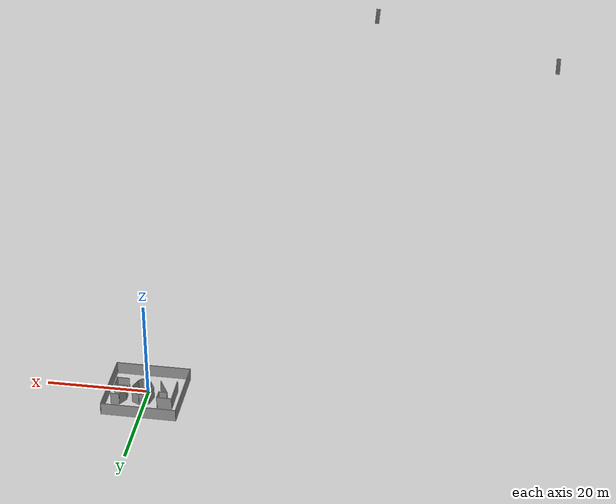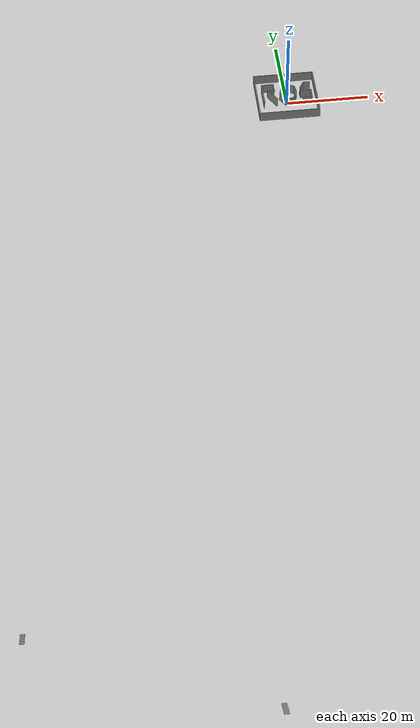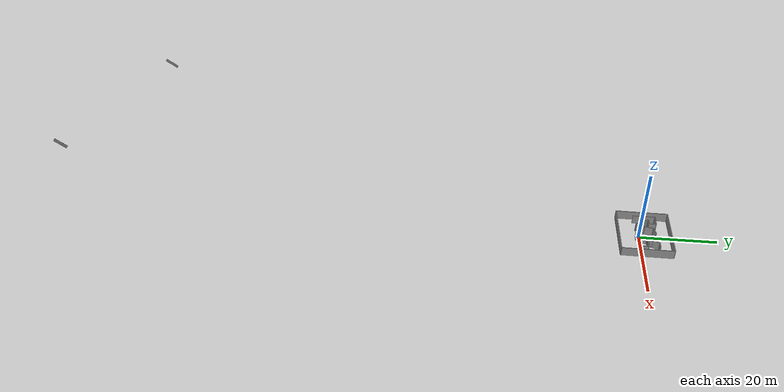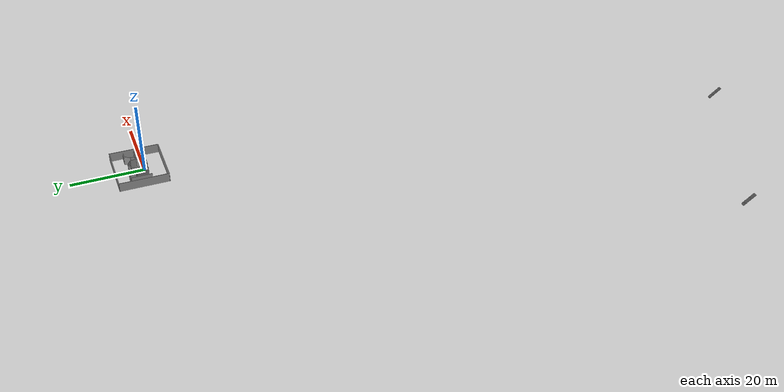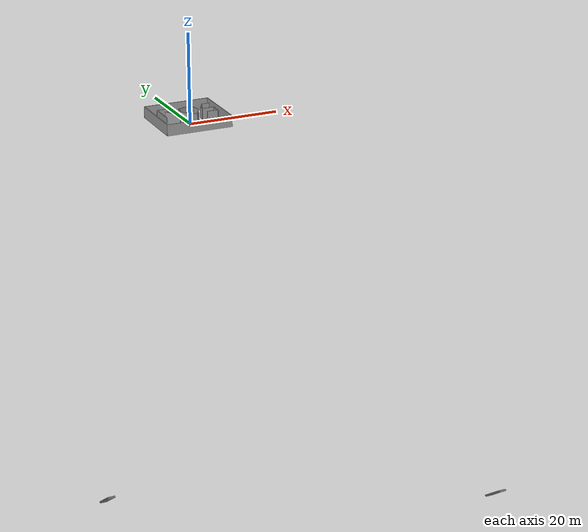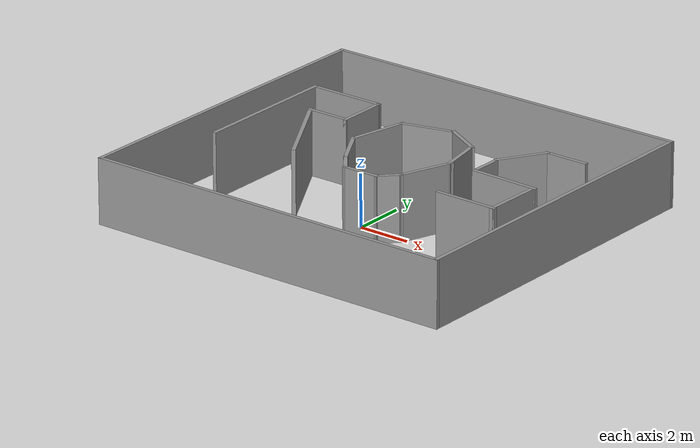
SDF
<?xml version='1.0'?>
<sdf version='1.7'>
  <model name='ROS_world'>
    <pose>-32.1144 -78.6719 0 0 -0 0</pose>
    <link name='Stairs_0'>
      <visual name='Stairs_0_Visual_0'>
        <pose>8.59693 -83.3954 0.083333 0 -0 0</pose>
        <geometry>
          <box>
            <size>1 0.233333 0.166667</size>
          </box>
        </geometry>
        <material>
          <script>
            <uri>file://media/materials/scripts/gazebo.material</uri>
            <name>Gazebo/Grey</name>
          </script>
          <ambient>1 1 1 1</ambient>
        </material>
        <meta>
          <layer>0</layer>
        </meta>
      </visual>
      <collision name='Stairs_0_Collision_0'>
        <geometry>
          <box>
            <size>1 0.233333 0.166667</size>
          </box>
        </geometry>
        <pose>8.59693 -83.3954 0.083333 0 -0 0</pose>
      </collision>
      <visual name='Stairs_0_Visual_1'>
        <pose>8.59693 -83.6287 0.25 0 -0 0</pose>
        <geometry>
          <box>
            <size>1 0.233333 0.166667</size>
          </box>
        </geometry>
        <material>
          <script>
            <uri>file://media/materials/scripts/gazebo.material</uri>
            <name>Gazebo/Grey</name>
          </script>
          <ambient>1 1 1 1</ambient>
        </material>
        <meta>
          <layer>0</layer>
        </meta>
      </visual>
      <collision name='Stairs_0_Collision_1'>
        <geometry>
          <box>
            <size>1 0.233333 0.166667</size>
          </box>
        </geometry>
        <pose>8.59693 -83.6287 0.25 0 -0 0</pose>
      </collision>
      <visual name='Stairs_0_Visual_2'>
        <pose>8.59693 -83.862 0.416667 0 -0 0</pose>
        <geometry>
          <box>
            <size>1 0.233333 0.166667</size>
          </box>
        </geometry>
        <material>
          <script>
            <uri>file://media/materials/scripts/gazebo.material</uri>
            <name>Gazebo/Grey</name>
          </script>
          <ambient>1 1 1 1</ambient>
        </material>
        <meta>
          <layer>0</layer>
        </meta>
      </visual>
      <collision name='Stairs_0_Collision_2'>
        <geometry>
          <box>
            <size>1 0.233333 0.166667</size>
          </box>
        </geometry>
        <pose>8.59693 -83.862 0.416667 0 -0 0</pose>
      </collision>
      <visual name='Stairs_0_Visual_3'>
        <pose>8.59693 -84.0954 0.583333 0 -0 0</pose>
        <geometry>
          <box>
            <size>1 0.233333 0.166667</size>
          </box>
        </geometry>
        <material>
          <script>
            <uri>file://media/materials/scripts/gazebo.material</uri>
            <name>Gazebo/Grey</name>
          </script>
          <ambient>1 1 1 1</ambient>
        </material>
        <meta>
          <layer>0</layer>
        </meta>
      </visual>
      <collision name='Stairs_0_Collision_3'>
        <geometry>
          <box>
            <size>1 0.233333 0.166667</size>
          </box>
        </geometry>
        <pose>8.59693 -84.0954 0.583333 0 -0 0</pose>
      </collision>
      <visual name='Stairs_0_Visual_4'>
        <pose>8.59693 -84.3287 0.75 0 -0 0</pose>
        <geometry>
          <box>
            <size>1 0.233333 0.166667</size>
          </box>
        </geometry>
        <material>
          <script>
            <uri>file://media/materials/scripts/gazebo.material</uri>
            <name>Gazebo/Grey</name>
          </script>
          <ambient>1 1 1 1</ambient>
        </material>
        <meta>
          <layer>0</layer>
        </meta>
      </visual>
      <collision name='Stairs_0_Collision_4'>
        <geometry>
          <box>
            <size>1 0.233333 0.166667</size>
          </box>
        </geometry>
        <pose>8.59693 -84.3287 0.75 0 -0 0</pose>
      </collision>
      <visual name='Stairs_0_Visual_5'>
        <pose>8.59693 -84.5621 0.916667 0 -0 0</pose>
        <geometry>
          <box>
            <size>1 0.233333 0.166667</size>
          </box>
        </geometry>
        <material>
          <script>
            <uri>file://media/materials/scripts/gazebo.material</uri>
            <name>Gazebo/Grey</name>
          </script>
          <ambient>1 1 1 1</ambient>
        </material>
        <meta>
          <layer>0</layer>
        </meta>
      </visual>
      <collision name='Stairs_0_Collision_5'>
        <geometry>
          <box>
            <size>1 0.233333 0.166667</size>
          </box>
        </geometry>
        <pose>8.59693 -84.5621 0.916667 0 -0 0</pose>
      </collision>
      <visual name='Stairs_0_Visual_6'>
        <pose>8.59693 -84.7954 1.08333 0 -0 0</pose>
        <geometry>
          <box>
            <size>1 0.233333 0.166667</size>
          </box>
        </geometry>
        <material>
          <script>
            <uri>file://media/materials/scripts/gazebo.material</uri>
            <name>Gazebo/Grey</name>
          </script>
          <ambient>1 1 1 1</ambient>
        </material>
        <meta>
          <layer>0</layer>
        </meta>
      </visual>
      <collision name='Stairs_0_Collision_6'>
        <geometry>
          <box>
            <size>1 0.233333 0.166667</size>
          </box>
        </geometry>
        <pose>8.59693 -84.7954 1.08333 0 -0 0</pose>
      </collision>
      <visual name='Stairs_0_Visual_7'>
        <pose>8.59693 -85.0287 1.25 0 -0 0</pose>
        <geometry>
          <box>
            <size>1 0.233333 0.166667</size>
          </box>
        </geometry>
        <material>
          <script>
            <uri>file://media/materials/scripts/gazebo.material</uri>
            <name>Gazebo/Grey</name>
          </script>
          <ambient>1 1 1 1</ambient>
        </material>
        <meta>
          <layer>0</layer>
        </meta>
      </visual>
      <collision name='Stairs_0_Collision_7'>
        <geometry>
          <box>
            <size>1 0.233333 0.166667</size>
          </box>
        </geometry>
        <pose>8.59693 -85.0287 1.25 0 -0 0</pose>
      </collision>
      <visual name='Stairs_0_Visual_8'>
        <pose>8.59693 -85.2621 1.41667 0 -0 0</pose>
        <geometry>
          <box>
            <size>1 0.233333 0.166667</size>
          </box>
        </geometry>
        <material>
          <script>
            <uri>file://media/materials/scripts/gazebo.material</uri>
            <name>Gazebo/Grey</name>
          </script>
          <ambient>1 1 1 1</ambient>
        </material>
        <meta>
          <layer>0</layer>
        </meta>
      </visual>
      <collision name='Stairs_0_Collision_8'>
        <geometry>
          <box>
            <size>1 0.233333 0.166667</size>
          </box>
        </geometry>
        <pose>8.59693 -85.2621 1.41667 0 -0 0</pose>
      </collision>
      <visual name='Stairs_0_Visual_9'>
        <pose>8.59693 -85.4954 1.58333 0 -0 0</pose>
        <geometry>
          <box>
            <size>1 0.233333 0.166667</size>
          </box>
        </geometry>
        <material>
          <script>
            <uri>file://media/materials/scripts/gazebo.material</uri>
            <name>Gazebo/Grey</name>
          </script>
          <ambient>1 1 1 1</ambient>
        </material>
        <meta>
          <layer>0</layer>
        </meta>
      </visual>
      <collision name='Stairs_0_Collision_9'>
        <geometry>
          <box>
            <size>1 0.233333 0.166667</size>
          </box>
        </geometry>
        <pose>8.59693 -85.4954 1.58333 0 -0 0</pose>
      </collision>
      <visual name='Stairs_0_Visual_10'>
        <pose>8.59693 -85.7287 1.75 0 -0 0</pose>
        <geometry>
          <box>
            <size>1 0.233333 0.166667</size>
          </box>
        </geometry>
        <material>
          <script>
            <uri>file://media/materials/scripts/gazebo.material</uri>
            <name>Gazebo/Grey</name>
          </script>
          <ambient>1 1 1 1</ambient>
        </material>
        <meta>
          <layer>0</layer>
        </meta>
      </visual>
      <collision name='Stairs_0_Collision_10'>
        <geometry>
          <box>
            <size>1 0.233333 0.166667</size>
          </box>
        </geometry>
        <pose>8.59693 -85.7287 1.75 0 -0 0</pose>
      </collision>
      <visual name='Stairs_0_Visual_11'>
        <pose>8.59693 -85.9621 1.91667 0 -0 0</pose>
        <geometry>
          <box>
            <size>1 0.233333 0.166667</size>
          </box>
        </geometry>
        <material>
          <script>
            <uri>file://media/materials/scripts/gazebo.material</uri>
            <name>Gazebo/Grey</name>
          </script>
          <ambient>1 1 1 1</ambient>
        </material>
        <meta>
          <layer>0</layer>
        </meta>
      </visual>
      <collision name='Stairs_0_Collision_11'>
        <geometry>
          <box>
            <size>1 0.233333 0.166667</size>
          </box>
        </geometry>
        <pose>8.59693 -85.9621 1.91667 0 -0 0</pose>
      </collision>
      <visual name='Stairs_0_Visual_12'>
        <pose>8.59693 -86.1954 2.08333 0 -0 0</pose>
        <geometry>
          <box>
            <size>1 0.233333 0.166667</size>
          </box>
        </geometry>
        <material>
          <script>
            <uri>file://media/materials/scripts/gazebo.material</uri>
            <name>Gazebo/Grey</name>
          </script>
          <ambient>1 1 1 1</ambient>
        </material>
        <meta>
          <layer>0</layer>
        </meta>
      </visual>
      <collision name='Stairs_0_Collision_12'>
        <geometry>
          <box>
            <size>1 0.233333 0.166667</size>
          </box>
        </geometry>
        <pose>8.59693 -86.1954 2.08333 0 -0 0</pose>
      </collision>
      <visual name='Stairs_0_Visual_13'>
        <pose>8.59693 -86.4287 2.25 0 -0 0</pose>
        <geometry>
          <box>
            <size>1 0.233333 0.166667</size>
          </box>
        </geometry>
        <material>
          <script>
            <uri>file://media/materials/scripts/gazebo.material</uri>
            <name>Gazebo/Grey</name>
          </script>
          <ambient>1 1 1 1</ambient>
        </material>
        <meta>
          <layer>0</layer>
        </meta>
      </visual>
      <collision name='Stairs_0_Collision_13'>
        <geometry>
          <box>
            <size>1 0.233333 0.166667</size>
          </box>
        </geometry>
        <pose>8.59693 -86.4287 2.25 0 -0 0</pose>
      </collision>
      <visual name='Stairs_0_Visual_14'>
        <pose>8.59693 -86.662 2.41667 0 -0 0</pose>
        <geometry>
          <box>
            <size>1 0.233333 0.166667</size>
          </box>
        </geometry>
        <material>
          <script>
            <uri>file://media/materials/scripts/gazebo.material</uri>
            <name>Gazebo/Grey</name>
          </script>
          <ambient>1 1 1 1</ambient>
        </material>
        <meta>
          <layer>0</layer>
        </meta>
      </visual>
      <collision name='Stairs_0_Collision_14'>
        <geometry>
          <box>
            <size>1 0.233333 0.166667</size>
          </box>
        </geometry>
        <pose>8.59693 -86.662 2.41667 0 -0 0</pose>
      </collision>
    </link>
    <link name='Stairs_1'>
      <visual name='Stairs_1_Visual_0'>
        <pose>-39.1028 -63.0357 0.083333 0 -0 0</pose>
        <geometry>
          <box>
            <size>1 0.233333 0.166667</size>
          </box>
        </geometry>
        <material>
          <script>
            <uri>file://media/materials/scripts/gazebo.material</uri>
            <name>Gazebo/Grey</name>
          </script>
          <ambient>1 1 1 1</ambient>
        </material>
        <meta>
          <layer>0</layer>
        </meta>
      </visual>
      <collision name='Stairs_1_Collision_0'>
        <geometry>
          <box>
            <size>1 0.233333 0.166667</size>
          </box>
        </geometry>
        <pose>-39.1028 -63.0357 0.083333 0 -0 0</pose>
      </collision>
      <visual name='Stairs_1_Visual_1'>
        <pose>-39.1028 -63.2691 0.25 0 -0 0</pose>
        <geometry>
          <box>
            <size>1 0.233333 0.166667</size>
          </box>
        </geometry>
        <material>
          <script>
            <uri>file://media/materials/scripts/gazebo.material</uri>
            <name>Gazebo/Grey</name>
          </script>
          <ambient>1 1 1 1</ambient>
        </material>
        <meta>
          <layer>0</layer>
        </meta>
      </visual>
      <collision name='Stairs_1_Collision_1'>
        <geometry>
          <box>
            <size>1 0.233333 0.166667</size>
          </box>
        </geometry>
        <pose>-39.1028 -63.2691 0.25 0 -0 0</pose>
      </collision>
      <visual name='Stairs_1_Visual_2'>
        <pose>-39.1028 -63.5024 0.416667 0 -0 0</pose>
        <geometry>
          <box>
            <size>1 0.233333 0.166667</size>
          </box>
        </geometry>
        <material>
          <script>
            <uri>file://media/materials/scripts/gazebo.material</uri>
            <name>Gazebo/Grey</name>
          </script>
          <ambient>1 1 1 1</ambient>
        </material>
        <meta>
          <layer>0</layer>
        </meta>
      </visual>
      <collision name='Stairs_1_Collision_2'>
        <geometry>
          <box>
            <size>1 0.233333 0.166667</size>
          </box>
        </geometry>
        <pose>-39.1028 -63.5024 0.416667 0 -0 0</pose>
      </collision>
      <visual name='Stairs_1_Visual_3'>
        <pose>-39.1028 -63.7357 0.583333 0 -0 0</pose>
        <geometry>
          <box>
            <size>1 0.233333 0.166667</size>
          </box>
        </geometry>
        <material>
          <script>
            <uri>file://media/materials/scripts/gazebo.material</uri>
            <name>Gazebo/Grey</name>
          </script>
          <ambient>1 1 1 1</ambient>
        </material>
        <meta>
          <layer>0</layer>
        </meta>
      </visual>
      <collision name='Stairs_1_Collision_3'>
        <geometry>
          <box>
            <size>1 0.233333 0.166667</size>
          </box>
        </geometry>
        <pose>-39.1028 -63.7357 0.583333 0 -0 0</pose>
      </collision>
      <visual name='Stairs_1_Visual_4'>
        <pose>-39.1028 -63.9691 0.75 0 -0 0</pose>
        <geometry>
          <box>
            <size>1 0.233333 0.166667</size>
          </box>
        </geometry>
        <material>
          <script>
            <uri>file://media/materials/scripts/gazebo.material</uri>
            <name>Gazebo/Grey</name>
          </script>
          <ambient>1 1 1 1</ambient>
        </material>
        <meta>
          <layer>0</layer>
        </meta>
      </visual>
      <collision name='Stairs_1_Collision_4'>
        <geometry>
          <box>
            <size>1 0.233333 0.166667</size>
          </box>
        </geometry>
        <pose>-39.1028 -63.9691 0.75 0 -0 0</pose>
      </collision>
      <visual name='Stairs_1_Visual_5'>
        <pose>-39.1028 -64.2024 0.916667 0 -0 0</pose>
        <geometry>
          <box>
            <size>1 0.233333 0.166667</size>
          </box>
        </geometry>
        <material>
          <script>
            <uri>file://media/materials/scripts/gazebo.material</uri>
            <name>Gazebo/Grey</name>
          </script>
          <ambient>1 1 1 1</ambient>
        </material>
        <meta>
          <layer>0</layer>
        </meta>
      </visual>
      <collision name='Stairs_1_Collision_5'>
        <geometry>
          <box>
            <size>1 0.233333 0.166667</size>
          </box>
        </geometry>
        <pose>-39.1028 -64.2024 0.916667 0 -0 0</pose>
      </collision>
      <visual name='Stairs_1_Visual_6'>
        <pose>-39.1028 -64.4357 1.08333 0 -0 0</pose>
        <geometry>
          <box>
            <size>1 0.233333 0.166667</size>
          </box>
        </geometry>
        <material>
          <script>
            <uri>file://media/materials/scripts/gazebo.material</uri>
            <name>Gazebo/Grey</name>
          </script>
          <ambient>1 1 1 1</ambient>
        </material>
        <meta>
          <layer>0</layer>
        </meta>
      </visual>
      <collision name='Stairs_1_Collision_6'>
        <geometry>
          <box>
            <size>1 0.233333 0.166667</size>
          </box>
        </geometry>
        <pose>-39.1028 -64.4357 1.08333 0 -0 0</pose>
      </collision>
      <visual name='Stairs_1_Visual_7'>
        <pose>-39.1028 -64.6691 1.25 0 -0 0</pose>
        <geometry>
          <box>
            <size>1 0.233333 0.166667</size>
          </box>
        </geometry>
        <material>
          <script>
            <uri>file://media/materials/scripts/gazebo.material</uri>
            <name>Gazebo/Grey</name>
          </script>
          <ambient>1 1 1 1</ambient>
        </material>
        <meta>
          <layer>0</layer>
        </meta>
      </visual>
      <collision name='Stairs_1_Collision_7'>
        <geometry>
          <box>
            <size>1 0.233333 0.166667</size>
          </box>
        </geometry>
        <pose>-39.1028 -64.6691 1.25 0 -0 0</pose>
      </collision>
      <visual name='Stairs_1_Visual_8'>
        <pose>-39.1028 -64.9024 1.41667 0 -0 0</pose>
        <geometry>
          <box>
            <size>1 0.233333 0.166667</size>
          </box>
        </geometry>
        <material>
          <script>
            <uri>file://media/materials/scripts/gazebo.material</uri>
            <name>Gazebo/Grey</name>
          </script>
          <ambient>1 1 1 1</ambient>
        </material>
        <meta>
          <layer>0</layer>
        </meta>
      </visual>
      <collision name='Stairs_1_Collision_8'>
        <geometry>
          <box>
            <size>1 0.233333 0.166667</size>
          </box>
        </geometry>
        <pose>-39.1028 -64.9024 1.41667 0 -0 0</pose>
      </collision>
      <visual name='Stairs_1_Visual_9'>
        <pose>-39.1028 -65.1357 1.58333 0 -0 0</pose>
        <geometry>
          <box>
            <size>1 0.233333 0.166667</size>
          </box>
        </geometry>
        <material>
          <script>
            <uri>file://media/materials/scripts/gazebo.material</uri>
            <name>Gazebo/Grey</name>
          </script>
          <ambient>1 1 1 1</ambient>
        </material>
        <meta>
          <layer>0</layer>
        </meta>
      </visual>
      <collision name='Stairs_1_Collision_9'>
        <geometry>
          <box>
            <size>1 0.233333 0.166667</size>
          </box>
        </geometry>
        <pose>-39.1028 -65.1357 1.58333 0 -0 0</pose>
      </collision>
      <visual name='Stairs_1_Visual_10'>
        <pose>-39.1028 -65.3691 1.75 0 -0 0</pose>
        <geometry>
          <box>
            <size>1 0.233333 0.166667</size>
          </box>
        </geometry>
        <material>
          <script>
            <uri>file://media/materials/scripts/gazebo.material</uri>
            <name>Gazebo/Grey</name>
          </script>
          <ambient>1 1 1 1</ambient>
        </material>
        <meta>
          <layer>0</layer>
        </meta>
      </visual>
      <collision name='Stairs_1_Collision_10'>
        <geometry>
          <box>
            <size>1 0.233333 0.166667</size>
          </box>
        </geometry>
        <pose>-39.1028 -65.3691 1.75 0 -0 0</pose>
      </collision>
      <visual name='Stairs_1_Visual_11'>
        <pose>-39.1028 -65.6024 1.91667 0 -0 0</pose>
        <geometry>
          <box>
            <size>1 0.233333 0.166667</size>
          </box>
        </geometry>
        <material>
          <script>
            <uri>file://media/materials/scripts/gazebo.material</uri>
            <name>Gazebo/Grey</name>
          </script>
          <ambient>1 1 1 1</ambient>
        </material>
        <meta>
          <layer>0</layer>
        </meta>
      </visual>
      <collision name='Stairs_1_Collision_11'>
        <geometry>
          <box>
            <size>1 0.233333 0.166667</size>
          </box>
        </geometry>
        <pose>-39.1028 -65.6024 1.91667 0 -0 0</pose>
      </collision>
      <visual name='Stairs_1_Visual_12'>
        <pose>-39.1028 -65.8357 2.08333 0 -0 0</pose>
        <geometry>
          <box>
            <size>1 0.233333 0.166667</size>
          </box>
        </geometry>
        <material>
          <script>
            <uri>file://media/materials/scripts/gazebo.material</uri>
            <name>Gazebo/Grey</name>
          </script>
          <ambient>1 1 1 1</ambient>
        </material>
        <meta>
          <layer>0</layer>
        </meta>
      </visual>
      <collision name='Stairs_1_Collision_12'>
        <geometry>
          <box>
            <size>1 0.233333 0.166667</size>
          </box>
        </geometry>
        <pose>-39.1028 -65.8357 2.08333 0 -0 0</pose>
      </collision>
      <visual name='Stairs_1_Visual_13'>
        <pose>-39.1028 -66.0691 2.25 0 -0 0</pose>
        <geometry>
          <box>
            <size>1 0.233333 0.166667</size>
          </box>
        </geometry>
        <material>
          <script>
            <uri>file://media/materials/scripts/gazebo.material</uri>
            <name>Gazebo/Grey</name>
          </script>
          <ambient>1 1 1 1</ambient>
        </material>
        <meta>
          <layer>0</layer>
        </meta>
      </visual>
      <collision name='Stairs_1_Collision_13'>
        <geometry>
          <box>
            <size>1 0.233333 0.166667</size>
          </box>
        </geometry>
        <pose>-39.1028 -66.0691 2.25 0 -0 0</pose>
      </collision>
      <visual name='Stairs_1_Visual_14'>
        <pose>-39.1028 -66.3024 2.41667 0 -0 0</pose>
        <geometry>
          <box>
            <size>1 0.233333 0.166667</size>
          </box>
        </geometry>
        <material>
          <script>
            <uri>file://media/materials/scripts/gazebo.material</uri>
            <name>Gazebo/Grey</name>
          </script>
          <ambient>1 1 1 1</ambient>
        </material>
        <meta>
          <layer>0</layer>
        </meta>
      </visual>
      <collision name='Stairs_1_Collision_14'>
        <geometry>
          <box>
            <size>1 0.233333 0.166667</size>
          </box>
        </geometry>
        <pose>-39.1028 -66.3024 2.41667 0 -0 0</pose>
      </collision>
    </link>
    <link name='Wall_11'>
      <collision name='Wall_11_Collision'>
        <geometry>
          <box>
            <size>13.4394 0.15 2.5</size>
          </box>
        </geometry>
        <pose>0 0 1.25 0 -0 0</pose>
      </collision>
      <visual name='Wall_11_Visual'>
        <pose>0 0 1.25 0 -0 0</pose>
        <geometry>
          <box>
            <size>13.4394 0.15 2.5</size>
          </box>
        </geometry>
        <material>
          <script>
            <uri>file://media/materials/scripts/gazebo.material</uri>
            <name>Gazebo/Grey</name>
          </script>
          <ambient>1 1 1 1</ambient>
        </material>
        <meta>
          <layer>0</layer>
        </meta>
      </visual>
      <pose>24.8875 80.0587 0 0 -0 1.5648</pose>
    </link>
    <link name='Wall_13'>
      <collision name='Wall_13_Collision'>
        <geometry>
          <box>
            <size>14.75 0.15 2.5</size>
          </box>
        </geometry>
        <pose>0 0 1.25 0 -0 0</pose>
      </collision>
      <visual name='Wall_13_Visual'>
        <pose>0 0 1.25 0 -0 0</pose>
        <geometry>
          <box>
            <size>14.75 0.15 2.5</size>
          </box>
        </geometry>
        <material>
          <script>
            <uri>file://media/materials/scripts/gazebo.material</uri>
            <name>Gazebo/Grey</name>
          </script>
          <ambient>1 1 1 1</ambient>
        </material>
        <meta>
          <layer>0</layer>
        </meta>
      </visual>
      <pose>32.2274 86.7033 0 0 -0 0</pose>
    </link>
    <link name='Wall_14'>
      <collision name='Wall_14_Collision'>
        <geometry>
          <box>
            <size>13.4394 0.15 2.5</size>
          </box>
        </geometry>
        <pose>0 0 1.25 0 -0 0</pose>
      </collision>
      <visual name='Wall_14_Visual'>
        <pose>0 0 1.25 0 -0 0</pose>
        <geometry>
          <box>
            <size>13.4394 0.15 2.5</size>
          </box>
        </geometry>
        <material>
          <script>
            <uri>file://media/materials/scripts/gazebo.material</uri>
            <name>Gazebo/Grey</name>
          </script>
          <ambient>1 1 1 1</ambient>
        </material>
        <meta>
          <layer>0</layer>
        </meta>
      </visual>
      <pose>39.4875 80.0587 0 0 -0 -1.57679</pose>
    </link>
    <link name='Wall_15'>
      <collision name='Wall_15_Collision'>
        <geometry>
          <box>
            <size>14.75 0.15 2.5</size>
          </box>
        </geometry>
        <pose>0 0 1.25 0 -0 0</pose>
      </collision>
      <visual name='Wall_15_Visual'>
        <pose>0 0 1.25 0 -0 0</pose>
        <geometry>
          <box>
            <size>14.75 0.15 2.5</size>
          </box>
        </geometry>
        <material>
          <script>
            <uri>file://media/materials/scripts/gazebo.material</uri>
            <name>Gazebo/Grey</name>
          </script>
          <ambient>1 1 1 1</ambient>
        </material>
        <meta>
          <layer>0</layer>
        </meta>
      </visual>
      <pose>32.1477 73.3742 0 0 -0 3.14159</pose>
    </link>
    <link name='Wall_17'>
      <collision name='Wall_17_Collision'>
        <geometry>
          <box>
            <size>5.75 0.15 2.5</size>
          </box>
        </geometry>
        <pose>0 0 1.25 0 -0 0</pose>
      </collision>
      <visual name='Wall_17_Visual'>
        <pose>0 0 1.25 0 -0 0</pose>
        <geometry>
          <box>
            <size>5.75 0.15 2.5</size>
          </box>
        </geometry>
        <material>
          <script>
            <uri>file://media/materials/scripts/gazebo.material</uri>
            <name>Gazebo/Grey</name>
          </script>
          <ambient>1 1 1 1</ambient>
        </material>
        <meta>
          <layer>0</layer>
        </meta>
      </visual>
      <pose>26.4457 80.4501 0 0 -0 -1.5708</pose>
    </link>
    <link name='Wall_19'>
      <collision name='Wall_19_Collision'>
        <geometry>
          <box>
            <size>3 0.15 2.5</size>
          </box>
        </geometry>
        <pose>0 0 1.25 0 -0 0</pose>
      </collision>
      <visual name='Wall_19_Visual'>
        <pose>0 0 1.25 0 -0 0</pose>
        <geometry>
          <box>
            <size>3 0.15 2.5</size>
          </box>
        </geometry>
        <material>
          <script>
            <uri>file://media/materials/scripts/gazebo.material</uri>
            <name>Gazebo/Grey</name>
          </script>
          <ambient>1 1 1 1</ambient>
        </material>
        <meta>
          <layer>0</layer>
        </meta>
      </visual>
      <pose>27.8707 83.2501 0 0 -0 0</pose>
    </link>
    <link name='Wall_20'>
      <collision name='Wall_20_Collision'>
        <geometry>
          <box>
            <size>2 0.15 2.5</size>
          </box>
        </geometry>
        <pose>0 0 1.25 0 -0 0</pose>
      </collision>
      <visual name='Wall_20_Visual'>
        <pose>0 0 1.25 0 -0 0</pose>
        <geometry>
          <box>
            <size>2 0.15 2.5</size>
          </box>
        </geometry>
        <material>
          <script>
            <uri>file://media/materials/scripts/gazebo.material</uri>
            <name>Gazebo/Grey</name>
          </script>
          <ambient>1 1 1 1</ambient>
        </material>
        <meta>
          <layer>0</layer>
        </meta>
      </visual>
      <pose>29.2957 82.3251 0 0 -0 -1.5708</pose>
    </link>
    <link name='Wall_21'>
      <collision name='Wall_21_Collision'>
        <geometry>
          <box>
            <size>1.75 0.15 2.5</size>
          </box>
        </geometry>
        <pose>0 0 1.25 0 -0 0</pose>
      </collision>
      <visual name='Wall_21_Visual'>
        <pose>0 0 1.25 0 -0 0</pose>
        <geometry>
          <box>
            <size>1.75 0.15 2.5</size>
          </box>
        </geometry>
        <material>
          <script>
            <uri>file://media/materials/scripts/gazebo.material</uri>
            <name>Gazebo/Grey</name>
          </script>
          <ambient>1 1 1 1</ambient>
        </material>
        <meta>
          <layer>0</layer>
        </meta>
      </visual>
      <pose>28.4957 81.4001 0 0 -0 3.14159</pose>
    </link>
    <link name='Wall_22'>
      <collision name='Wall_22_Collision'>
        <geometry>
          <box>
            <size>4 0.15 2.5</size>
          </box>
        </geometry>
        <pose>0 0 1.25 0 -0 0</pose>
      </collision>
      <visual name='Wall_22_Visual'>
        <pose>0 0 1.25 0 -0 0</pose>
        <geometry>
          <box>
            <size>4 0.15 2.5</size>
          </box>
        </geometry>
        <material>
          <script>
            <uri>file://media/materials/scripts/gazebo.material</uri>
            <name>Gazebo/Grey</name>
          </script>
          <ambient>1 1 1 1</ambient>
        </material>
        <meta>
          <layer>0</layer>
        </meta>
      </visual>
      <pose>28.6582 79.733 0 0 -0 -1.0472</pose>
    </link>
    <link name='Wall_25'>
      <collision name='Wall_25_Collision'>
        <geometry>
          <box>
            <size>1.87052 0.15 2.5</size>
          </box>
        </geometry>
        <pose>0 0 1.25 0 -0 0</pose>
      </collision>
      <visual name='Wall_25_Visual'>
        <pose>0 0 1.25 0 -0 0</pose>
        <geometry>
          <box>
            <size>1.87052 0.15 2.5</size>
          </box>
        </geometry>
        <material>
          <script>
            <uri>file://media/materials/scripts/gazebo.material</uri>
            <name>Gazebo/Grey</name>
          </script>
          <ambient>1 1 1 1</ambient>
        </material>
        <meta>
          <layer>0</layer>
        </meta>
      </visual>
      <pose>31.0046 79.439 0 0 -0 2.08431</pose>
    </link>
    <link name='Wall_26'>
      <collision name='Wall_26_Collision'>
        <geometry>
          <box>
            <size>2.31401 0.15 2.5</size>
          </box>
        </geometry>
        <pose>0 0 1.25 0 -0 0</pose>
      </collision>
      <visual name='Wall_26_Visual'>
        <pose>0 0 1.25 0 -0 0</pose>
        <geometry>
          <box>
            <size>2.31401 0.15 2.5</size>
          </box>
        </geometry>
        <material>
          <script>
            <uri>file://media/materials/scripts/gazebo.material</uri>
            <name>Gazebo/Grey</name>
          </script>
          <ambient>1 1 1 1</ambient>
        </material>
        <meta>
          <layer>0</layer>
        </meta>
      </visual>
      <pose>30.8409 81.2667 0 0 -0 1.3506</pose>
    </link>
    <link name='Wall_31'>
      <collision name='Wall_31_Collision'>
        <geometry>
          <box>
            <size>1.13235 0.15 2.5</size>
          </box>
        </geometry>
        <pose>0 0 1.25 0 -0 0</pose>
      </collision>
      <visual name='Wall_31_Visual'>
        <pose>0 0 1.25 0 -0 0</pose>
        <geometry>
          <box>
            <size>1.13235 0.15 2.5</size>
          </box>
        </geometry>
        <material>
          <script>
            <uri>file://media/materials/scripts/gazebo.material</uri>
            <name>Gazebo/Grey</name>
          </script>
          <ambient>1 1 1 1</ambient>
        </material>
        <meta>
          <layer>0</layer>
        </meta>
      </visual>
      <pose>31.725 78.2991 0 0 -0 -0.919279</pose>
    </link>
    <link name='Wall_32'>
      <collision name='Wall_32_Collision'>
        <geometry>
          <box>
            <size>1.5 0.15 2.5</size>
          </box>
        </geometry>
        <pose>0 0 1.25 0 -0 0</pose>
      </collision>
      <visual name='Wall_32_Visual'>
        <pose>0 0 1.25 0 -0 0</pose>
        <geometry>
          <box>
            <size>1.5 0.15 2.5</size>
          </box>
        </geometry>
        <material>
          <script>
            <uri>file://media/materials/scripts/gazebo.material</uri>
            <name>Gazebo/Grey</name>
          </script>
          <ambient>1 1 1 1</ambient>
        </material>
        <meta>
          <layer>0</layer>
        </meta>
      </visual>
      <pose>32.6979 77.9085 0 0 -0 0</pose>
    </link>
    <link name='Wall_33'>
      <collision name='Wall_33_Collision'>
        <geometry>
          <box>
            <size>1 0.15 2.5</size>
          </box>
        </geometry>
        <pose>0 0 1.25 0 -0 0</pose>
      </collision>
      <visual name='Wall_33_Visual'>
        <pose>0 0 1.25 0 -0 0</pose>
        <geometry>
          <box>
            <size>1 0.15 2.5</size>
          </box>
        </geometry>
        <material>
          <script>
            <uri>file://media/materials/scripts/gazebo.material</uri>
            <name>Gazebo/Grey</name>
          </script>
          <ambient>1 1 1 1</ambient>
        </material>
        <meta>
          <layer>0</layer>
        </meta>
      </visual>
      <pose>33.6734 78.209 0 0 -0 0.785398</pose>
    </link>
    <link name='Wall_34'>
      <collision name='Wall_34_Collision'>
        <geometry>
          <box>
            <size>2.18412 0.15 2.5</size>
          </box>
        </geometry>
        <pose>0 0 1.25 0 -0 0</pose>
      </collision>
      <visual name='Wall_34_Visual'>
        <pose>0 0 1.25 0 -0 0</pose>
        <geometry>
          <box>
            <size>2.18412 0.15 2.5</size>
          </box>
        </geometry>
        <material>
          <script>
            <uri>file://media/materials/scripts/gazebo.material</uri>
            <name>Gazebo/Grey</name>
          </script>
          <ambient>1 1 1 1</ambient>
        </material>
        <meta>
          <layer>0</layer>
        </meta>
      </visual>
      <pose>34.3279 79.4631 0 0 -0 1.21538</pose>
    </link>
    <link name='Wall_35'>
      <collision name='Wall_35_Collision'>
        <geometry>
          <box>
            <size>1.77613 0.15 2.5</size>
          </box>
        </geometry>
        <pose>0 0 1.25 0 -0 0</pose>
      </collision>
      <visual name='Wall_35_Visual'>
        <pose>0 0 1.25 0 -0 0</pose>
        <geometry>
          <box>
            <size>1.77613 0.15 2.5</size>
          </box>
        </geometry>
        <material>
          <script>
            <uri>file://media/materials/scripts/gazebo.material</uri>
            <name>Gazebo/Grey</name>
          </script>
          <ambient>1 1 1 1</ambient>
        </material>
        <meta>
          <layer>0</layer>
        </meta>
      </visual>
      <pose>34.5117 81.1483 0 0 -0 1.75321</pose>
    </link>
    <link name='Wall_36'>
      <collision name='Wall_36_Collision'>
        <geometry>
          <box>
            <size>1.7609 0.15 2.5</size>
          </box>
        </geometry>
        <pose>0 0 1.25 0 -0 0</pose>
      </collision>
      <visual name='Wall_36_Visual'>
        <pose>0 0 1.25 0 -0 0</pose>
        <geometry>
          <box>
            <size>1.7609 0.15 2.5</size>
          </box>
        </geometry>
        <material>
          <script>
            <uri>file://media/materials/scripts/gazebo.material</uri>
            <name>Gazebo/Grey</name>
          </script>
          <ambient>1 1 1 1</ambient>
        </material>
        <meta>
          <layer>0</layer>
        </meta>
      </visual>
      <pose>33.6855 82.4119 0 0 -0 2.62729</pose>
    </link>
    <link name='Wall_37'>
      <collision name='Wall_37_Collision'>
        <geometry>
          <box>
            <size>2.11786 0.15 2.5</size>
          </box>
        </geometry>
        <pose>0 0 1.25 0 -0 0</pose>
      </collision>
      <visual name='Wall_37_Visual'>
        <pose>0 0 1.25 0 -0 0</pose>
        <geometry>
          <box>
            <size>2.11786 0.15 2.5</size>
          </box>
        </geometry>
        <material>
          <script>
            <uri>file://media/materials/scripts/gazebo.material</uri>
            <name>Gazebo/Grey</name>
          </script>
          <ambient>1 1 1 1</ambient>
        </material>
        <meta>
          <layer>0</layer>
        </meta>
      </visual>
      <pose>32.0082 82.5428 0 0 -0 -2.89229</pose>
    </link>
    <link name='Wall_39'>
      <collision name='Wall_39_Collision'>
        <geometry>
          <box>
            <size>1.75 0.15 2.5</size>
          </box>
        </geometry>
        <pose>0 0 1.25 0 -0 0</pose>
      </collision>
      <visual name='Wall_39_Visual'>
        <pose>0 0 1.25 0 -0 0</pose>
        <geometry>
          <box>
            <size>1.75 0.15 2.5</size>
          </box>
        </geometry>
        <material>
          <script>
            <uri>file://media/materials/scripts/gazebo.material</uri>
            <name>Gazebo/Grey</name>
          </script>
          <ambient>1 1 1 1</ambient>
        </material>
        <meta>
          <layer>0</layer>
        </meta>
      </visual>
      <pose>37.5444 83.2271 0 0 -0 3.14159</pose>
    </link>
    <link name='Wall_40'>
      <collision name='Wall_40_Collision'>
        <geometry>
          <box>
            <size>2.0368 0.15 2.5</size>
          </box>
        </geometry>
        <pose>0 0 1.25 0 -0 0</pose>
      </collision>
      <visual name='Wall_40_Visual'>
        <pose>0 0 1.25 0 -0 0</pose>
        <geometry>
          <box>
            <size>2.0368 0.15 2.5</size>
          </box>
        </geometry>
        <material>
          <script>
            <uri>file://media/materials/scripts/gazebo.material</uri>
            <name>Gazebo/Grey</name>
          </script>
          <ambient>1 1 1 1</ambient>
        </material>
        <meta>
          <layer>0</layer>
        </meta>
      </visual>
      <pose>36.2444 82.4271 0 0 -0 -2.1294</pose>
    </link>
    <link name='Wall_42'>
      <collision name='Wall_42_Collision'>
        <geometry>
          <box>
            <size>1.22664 0.15 2.5</size>
          </box>
        </geometry>
        <pose>0 0 1.25 0 -0 0</pose>
      </collision>
      <visual name='Wall_42_Visual'>
        <pose>0 0 1.25 0 -0 0</pose>
        <geometry>
          <box>
            <size>1.22664 0.15 2.5</size>
          </box>
        </geometry>
        <material>
          <script>
            <uri>file://media/materials/scripts/gazebo.material</uri>
            <name>Gazebo/Grey</name>
          </script>
          <ambient>1 1 1 1</ambient>
        </material>
        <meta>
          <layer>0</layer>
        </meta>
      </visual>
      <pose>35.7444 81.0888 0 0 -0 -1.5708</pose>
    </link>
    <link name='Wall_43'>
      <collision name='Wall_43_Collision'>
        <geometry>
          <box>
            <size>2.73648 0.15 2.5</size>
          </box>
        </geometry>
        <pose>0 0 1.25 0 -0 0</pose>
      </collision>
      <visual name='Wall_43_Visual'>
        <pose>0 0 1.25 0 -0 0</pose>
        <geometry>
          <box>
            <size>2.73648 0.15 2.5</size>
          </box>
        </geometry>
        <material>
          <script>
            <uri>file://media/materials/scripts/gazebo.material</uri>
            <name>Gazebo/Grey</name>
          </script>
          <ambient>1 1 1 1</ambient>
        </material>
        <meta>
          <layer>0</layer>
        </meta>
      </visual>
      <pose>37.0371 80.3472 0 0 -0 -0.030361</pose>
    </link>
    <link name='Wall_44'>
      <collision name='Wall_44_Collision'>
        <geometry>
          <box>
            <size>2.38756 0.15 2.5</size>
          </box>
        </geometry>
        <pose>0 0 1.25 0 -0 0</pose>
      </collision>
      <visual name='Wall_44_Visual'>
        <pose>0 0 1.25 0 -0 0</pose>
        <geometry>
          <box>
            <size>2.38756 0.15 2.5</size>
          </box>
        </geometry>
        <material>
          <script>
            <uri>file://media/materials/scripts/gazebo.material</uri>
            <name>Gazebo/Grey</name>
          </script>
          <ambient>1 1 1 1</ambient>
        </material>
        <meta>
          <layer>0</layer>
        </meta>
      </visual>
      <pose>38.2601 79.1668 0 0 -0 -1.59262</pose>
    </link>
    <link name='Wall_45'>
      <collision name='Wall_45_Collision'>
        <geometry>
          <box>
            <size>2.49489 0.15 2.5</size>
          </box>
        </geometry>
        <pose>0 0 1.25 0 -0 0</pose>
      </collision>
      <visual name='Wall_45_Visual'>
        <pose>0 0 1.25 0 -0 0</pose>
        <geometry>
          <box>
            <size>2.49489 0.15 2.5</size>
          </box>
        </geometry>
        <material>
          <script>
            <uri>file://media/materials/scripts/gazebo.material</uri>
            <name>Gazebo/Grey</name>
          </script>
          <ambient>1 1 1 1</ambient>
        </material>
        <meta>
          <layer>0</layer>
        </meta>
      </visual>
      <pose>37.1085 78.0828 0 0 -0 3.13142</pose>
    </link>
    <static>1</static>
  </model>
</sdf>
